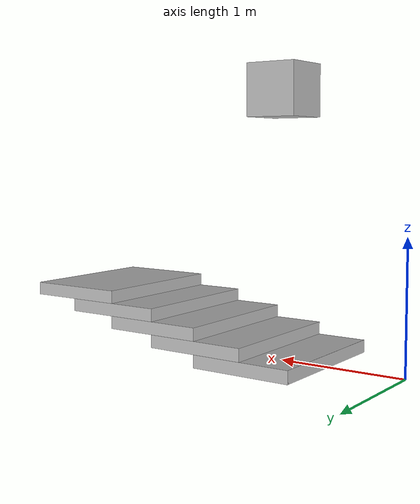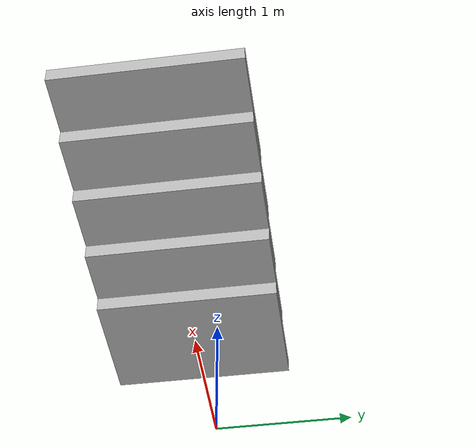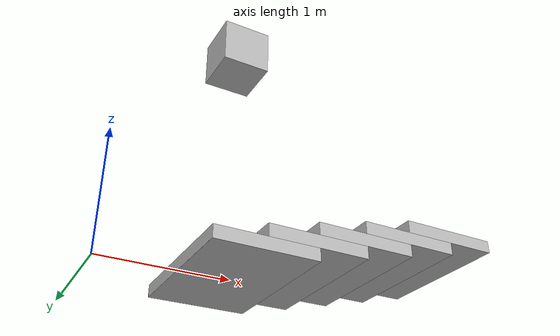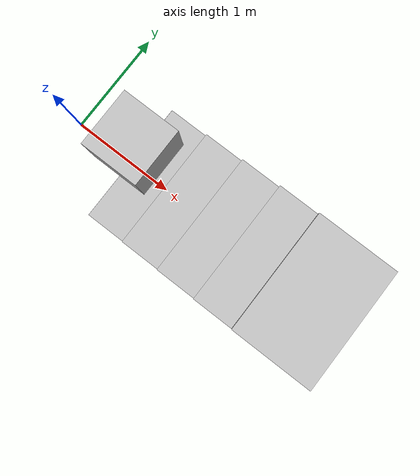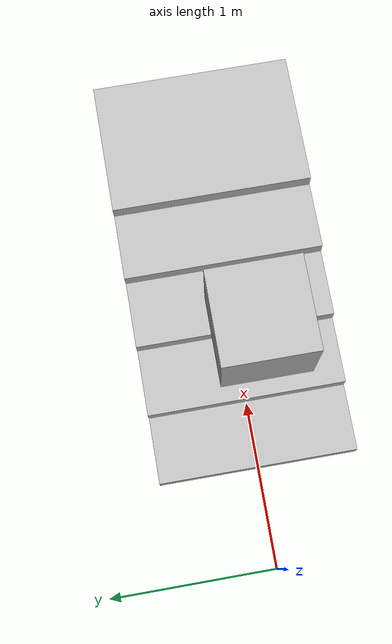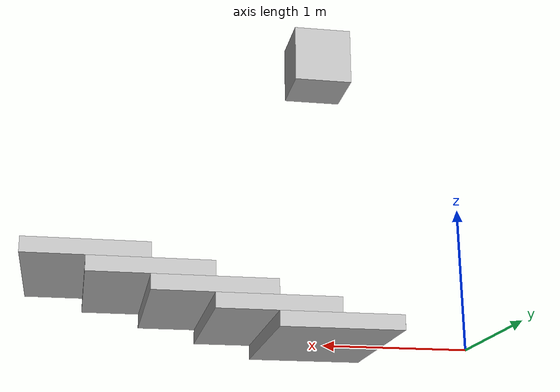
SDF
<?xml version="1.0"?>
<sdf version="1.5">

    <model name="stairs">
      <static>true</static>
      <pose> 1.0 0 0.05 0 0 0</pose>

      <link name="table">
        <pose> 0.0 0.0 2.0 0 0 0</pose>
        <collision name="collision">
          <geometry>
            <box> <size>0.4 0.4 0.4</size> </box>
          </geometry>
        </collision>
        <visual name="visual">
          <geometry>
            <box> <size>0.4 0.4 0.4</size> </box>
          </geometry>

        </visual>
      </link>

      <link name="step1">
        <collision name="collision">
          <geometry>
            <box> <size>0.8 1.2 0.1</size> </box>
          </geometry>
        </collision>
        <visual name="visual">
          <geometry>
            <box> <size>0.8 1.2 0.1</size> </box>
          </geometry>
        </visual>
      </link>

      <link name="step_edge">
        <pose> -0.4 0.0 0.0 1.57 0 1.57</pose>
        <collision name="collision">
          <geometry>
            <box> <size>1.2 0.1 0.001</size> </box>
          </geometry>
        </collision>
        <visual name="visual">
          <geometry>
            <box> <size>1.2 0.1 0.001</size> </box>
          </geometry>
        </visual>
      </link>

      <link name="step2">
        <pose> 0.4 0 0.1 0 0 0</pose>
        <collision name="collision">
          <geometry>
            <box> <size>0.8 1.2 0.1</size> </box>
          </geometry>
        </collision>
        <visual name="visual">
          <geometry>
            <box> <size>0.8 1.2 0.1</size> </box>
          </geometry>
        </visual>
      </link>

      <link name="step3">
        <pose> 0.8 0 0.2 0 0 0</pose>
        <collision name="collision">
          <geometry>
            <box> <size>0.8 1.2 0.1</size> </box>
          </geometry>
        </collision>
        <visual name="visual">
          <geometry>
            <box> <size>0.8 1.2 0.1</size> </box>
          </geometry>
        </visual>
      </link>

      <link name="step4">
        <pose> 1.2 0 0.3 0 0 0</pose>
        <collision name="collision">
          <geometry>
            <box> <size>0.8 1.2 0.1</size> </box>
          </geometry>
        </collision>
        <visual name="visual">
          <geometry>
            <box> <size>0.8 1.2 0.1</size> </box>
          </geometry>
        </visual>
      </link>

      <link name="step5">
        <pose> 1.6 0 0.4 0 0 0</pose>
        <collision name="collision">
          <geometry>
            <box> <size>0.8 1.2 0.1</size> </box>
          </geometry>
        </collision>
        <visual name="visual">
          <geometry>
            <box> <size>0.8 1.2 0.1</size> </box>
          </geometry>
        </visual>
      </link>

    </model>
</sdf>
